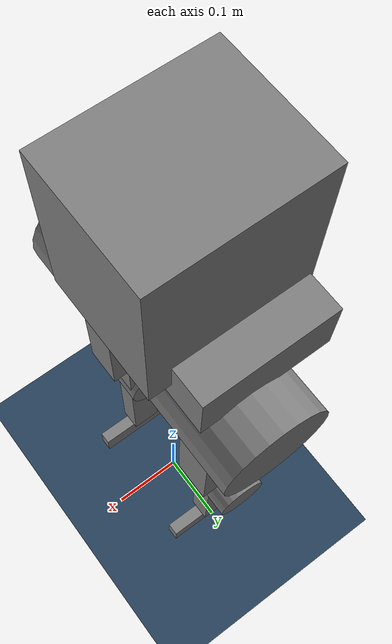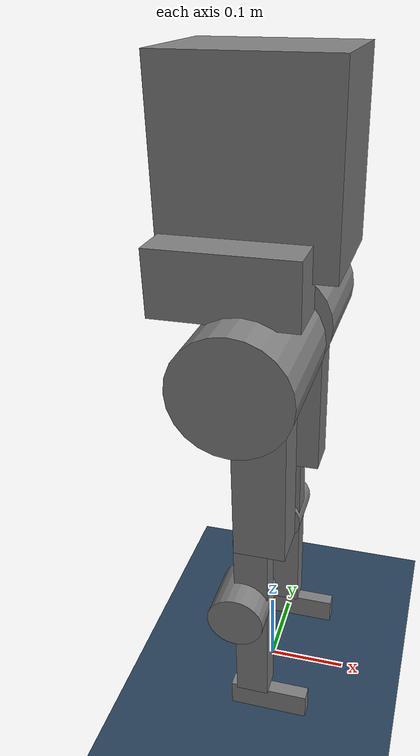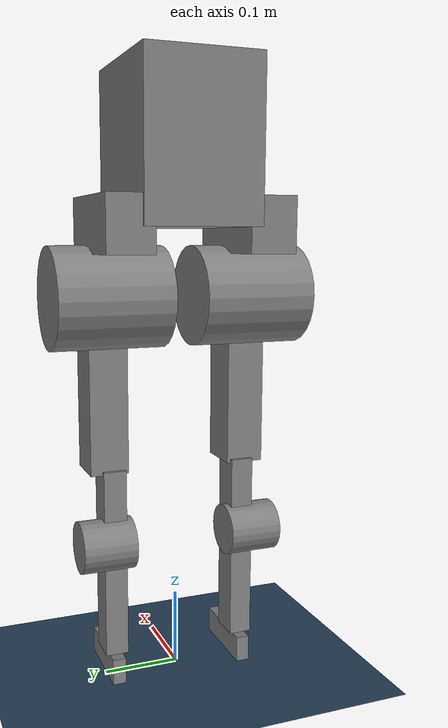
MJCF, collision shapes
<mujoco model="hunter scene">
  <include file="hunter.xml"/>

  <statistic center="0 0 1" extent="1.8"/>

  <visual>
    <headlight diffuse="0.6 0.6 0.6" ambient="0.3 0.3 0.3" specular="0 0 0"/>
    <rgba haze="0.15 0.25 0.35 1"/>
    <global azimuth="160" elevation="-20"/>
  </visual>

  <asset>
    <texture type="skybox" builtin="gradient" rgb1="0.3 0.5 0.7" rgb2="0 0 0" width="512" height="3072"/>
    <texture type="2d" name="groundplane" builtin="checker" mark="edge" rgb1="0.2 0.3 0.4" rgb2="0.1 0.2 0.3"
      markrgb="0.8 0.8 0.8" width="300" height="300"/>
    <material name="groundplane" texture="groundplane" texuniform="true" texrepeat="5 5" reflectance="0.2"/>
  </asset>

  <worldbody>
    <light pos="0 0 3.5" dir="0 0 -1" directional="true"/>
    <geom name="floor" size="0 0 0.05" type="plane" material="groundplane"/>
  </worldbody>

  <keyframe>
    <key name="home"
      qpos="
    0 0 0.70
    1 0 0 0
    0 0 0 0 0
    0 0 0 0 0 "/>
  </keyframe>

</mujoco>

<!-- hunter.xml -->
<mujoco model="hunter">
  <compiler angle="radian" meshdir="meshes/"/>

  <default>
    <default class="hunter">
      <joint damping="1" armature="0.1"/>
      <default class="visual">
        <geom type="mesh" contype="0" conaffinity="0" group="1" density="0" rgba="0.75294 0.75294 0.75294 1"/>
      </default>
      <default class="collision">
        <geom group="3" mass="0" density="0"/>
        <default class="foot">
          <geom type="sphere" size=".001"/>
          <default class="foot1">
            <geom size="0.001" contype="0" conaffinity="0" density="0"/>
          </default>
          <default class="foot2">
            <geom size="0.001"/>
          </default>
        </default>
      </default>
      <site size="0.001" rgba="0.5 0.5 0.5 0.3" group="4"/>
    </default>
    <default class="hunter_motor">
      <motor gear="1" ctrllimited="true" ctrlrange="-100  100" />
    </default>

  </default>

  <asset>
    <mesh name="base_link" file="base_link.STL"/>
    <mesh name="leg_l1_link" file="leg_l1_link.STL"/>
    <mesh name="leg_l2_link" file="leg_l2_link.STL"/>
    <mesh name="leg_l3_link" file="leg_l3_link.STL"/>
    <mesh name="leg_l4_link" file="leg_l4_link.STL"/>
    <mesh name="leg_l5_link" file="leg_l5_link.STL"/>
    <mesh name="leg_r1_link" file="leg_r1_link.STL"/>
    <mesh name="leg_r2_link" file="leg_r2_link.STL"/>
    <mesh name="leg_r3_link" file="leg_r3_link.STL"/>
    <mesh name="leg_r4_link" file="leg_r4_link.STL"/>
    <mesh name="leg_r5_link" file="leg_r5_link.STL"/>
  </asset>
  <worldbody>
    <light mode="targetbodycom" target="base_link" pos="2 0 2.5"/>
    <body name="base_link" pos="0 0 0.7" childclass="hunter">
      <inertial pos="-0.010856 -6.8e-05 -0.007128" quat="0.979606 0.00882716 0.200723 -0.00231074" mass="5.67363"
      	diaginertia="0.0355096 0.0296524 0.0283549"/>
      <freejoint/>
      <geom class="visual" mesh="base_link"/>
      <geom class="collision" size="0.092 0.075 0.1" pos="-0.01 0 -0.006" type="box"/>
      <site name="imu" pos="0 0 0"/>
      <body name="leg_l1_link" pos="-0.002 0.09 -0.1035">
        <inertial pos="0.002501 5.3e-05 -0.002722" quat="0.472677 0.527005 0.495251 0.503556" mass="0.453728"
          diaginertia="0.000163063 0.000147076 8.18618e-05"/>
        <joint name="leg_l1_joint" pos="0 0 0" axis="1 0 0" range="-0.2 0.5" frictionloss="0.2"/>
        <geom class="visual" mesh="leg_l1_link"/>
        <geom class="collision" type="box" size="0.03 0.035 0.0775" pos="-0.019 -0.001 0" quat="0.500398 0.5 0.499602 0.5"/>
        <body name="leg_l2_link" pos="0 -0.00016972 -0.0325">
          <inertial pos="-0.000273 0.043826 -0.058639" quat="0.7074 0.0648812 -0.0612384 0.70116" mass="0.925998"
            diaginertia="0.00166463 0.00123897 0.0010754"/>
          <joint name="leg_l2_joint" pos="0 0 0" axis="0 0 1" range="-0.5 1" frictionloss="0.2"/>
          <geom class="visual" mesh="leg_l2_link"/>
          <geom class="collision" size="0.065 0.073" pos="0 0.0046 -0.057" quat="0.707388 0.706825 0 0" type="cylinder" />
          <body name="leg_l3_link" pos="0 -0.01433 -0.0575">
            <inertial pos="0.003163 -0.022552 -0.027258" quat="0.678041 0.0230005 -0.0875592 0.729428" mass="1.39047" diaginertia="0.00722081 0.00694653 0.00181065"/>
            <joint name="leg_l3_joint" pos="0 0 0" axis="0 -1 0" range="-0.8 1.2" frictionloss="0.2"/>
            <geom class="visual" mesh="leg_l3_link"/>
            <geom class="collision" size="0.03 0.125 0.025" pos="0.015 0.02 -0.1" quat="0.707388 0.706825 0 0" type="box"/>
            <body name="leg_l4_link" pos="0 0.0145 -0.24">
              <inertial pos="-0.012044 0.006361 -0.093905" quat="0.696191 0.0388817 0.0714045 0.713237" mass="0.649518" diaginertia="0.00246473 0.00221871 0.000430556"/>
              <joint name="leg_l4_joint" pos="0 0 0" axis="0 1 0" range="0 1.5" frictionloss="0.2"/>
              <geom class="visual" mesh="leg_l4_link"/>
              <geom class="collision" size="0.0205 0.125 0.015" pos="0 0 -0.105" quat="0.707388 0.706825 0 0" type="box"/>
              <geom class="collision" size="0.034 0.035" pos="-0.011 0.012 -0.079" quat="0.707388 0.706825 0 0" type="cylinder" />
              <body name="leg_l5_link" pos="0.005 0 -0.23995">
                <inertial pos="0.012435 0 -0.015511" quat="0.48854 0.511203 0.511203 0.48854" mass="0.030265" diaginertia="2.5e-05 2.40454e-05 1.95464e-06"/>
                <joint name="leg_l5_joint" pos="0 0 0" axis="0 -1 0" range="-1.1 1.1" frictionloss="0.2"/>
                <geom class="visual" mesh="leg_l5_link"/>
                <geom class="collision" size="0.05005 0.01725 0.00875" pos="0.01503 0 -0.0102" quat="0.707388 0.706825 0 0" type="box" />
                <body name="leg_l_f1_link" pos="0.06 0 -0.007">
                  <inertial pos="0 0 0" mass="0.01" diaginertia="1e-06 1e-06 1e-06"/>
                  <geom class="foot1"/>
                  <geom class="foot2"/>
                  <site name="leg_l_f1_site" pos="0 0 0"/>
                </body>
                <body name="leg_l_f2_link" pos="-0.03 0 -0.007">
                  <inertial pos="0 0 0" mass="0.01" diaginertia="1e-06 1e-06 1e-06"/>
                  <geom class="foot1"/>
                  <geom class="foot2"/>
                  <site name="leg_l_f2_site" pos="0 0 0"/>
                </body>
              </body>
            </body>
          </body>
        </body>
      </body>
      <body name="leg_r1_link" pos="-0.002 -0.09 -0.1035">
        <inertial pos="0.002501 -5.3e-05 -0.002722" quat="0.503556 0.495251 0.527005 0.472677" mass="0.453728" diaginertia="0.000163063 0.000147076 8.18618e-05"/>
        <joint name="leg_r1_joint" pos="0 0 0" axis="1 0 0" range="-0.5 0.2" frictionloss="0.2"/>
        <geom class="visual" mesh="leg_r1_link"/>
        <geom class="collision" size="0.03 0.035 0.0775" pos="-0.019 -0.001 0" quat="0.500398 0.5 0.499602 0.5" type="box"/>
        <body name="leg_r2_link" pos="0 0.00016972 -0.0325">
          <inertial pos="9e-05 -0.043826 -0.058639" quat="0.7074 0.0648812 -0.0612384 0.70116" mass="0.925998" diaginertia="0.00166463 0.00123897 0.0010754"/>
          <joint name="leg_r2_joint" pos="0 0 0" axis="0 0 1" range="-1 0.5" frictionloss="0.2"/>
          <geom class="visual" mesh="leg_r2_link"/>
          <geom class="collision" size="0.065 0.073" pos="0 -0.0033 -0.057" quat="0.707388 0.706825 0 0" type="cylinder"/>
          <body name="leg_r3_link" pos="0 0.01633 -0.0575">
            <inertial pos="0.003311 0.02265 -0.027271" quat="0.734236 -0.0877978 0.023126 0.672795" mass="1.38862" diaginertia="0.00722344 0.00694292 0.00180965"/>
            <joint name="leg_r3_joint" pos="0 0 0" axis="0 1 0" range="-1.2 0.8" frictionloss="0.2"/>
            <geom class="visual" mesh="leg_r3_link"/>
            <geom class="collision" size="0.03 0.125 0.025" pos="0.015 -0.02 -0.1" quat="0.707388 0.706825 0 0" type="box"/>
            <body name="leg_r4_link" pos="0 -0.0145 -0.24">
              <inertial pos="-0.007886 -0.007123 -0.088091" quat="0.589012 0.00853647 -0.018288 0.807872" mass="0.61472" diaginertia="0.00177827 0.00175932 0.00018341"/>
              <joint name="leg_r4_joint" pos="0 0 0" axis="0 1 0" range="0 1.5" frictionloss="0.2"/>
              <geom class="visual" mesh="leg_r4_link"/>
              <geom class="collision" size="0.0205 0.125 0.015" pos="0 0 -0.105" quat="0.707388 0.706825 0 0" type="box" />
              <geom class="collision" size="0.034 0.035" pos="-0.011 -0.012 -0.079" quat="0.707388 0.706825 0 0" type="cylinder" />
              <body name="leg_r5_link" pos="0.005 0 -0.23995">
                <inertial pos="0.012435 -0.0005 -0.015511" quat="0.48854 0.511203 0.511203 0.48854" mass="0.030265" diaginertia="2.5e-05 2.40454e-05 1.95464e-06"/>
                <joint name="leg_r5_joint" pos="0 0 0" axis="0 1 0" range="-1.1 1.1" frictionloss="0.2"/>
                <geom class="visual" mesh="leg_r5_link"/>
                <geom class="collision" size="0.05005 0.01725 0.00875" pos="0.01503 0 -0.0102" quat="0.707388 0.706825 0 0" type="box" />
                <body name="leg_r_f1_link" pos="0.06 0 -0.007">
                  <inertial pos="0 0 0" mass="0.01" diaginertia="1e-06 1e-06 1e-06"/>
                  <geom class="foot1"/>
                  <geom class="foot2"/>
                  <site name="leg_r_f1_site" pos="0 0 0"/>
                </body>
                <body name="leg_r_f2_link" pos="-0.03 0 -0.007">
                  <inertial pos="0 0 0" mass="0.01" diaginertia="1e-06 1e-06 1e-06"/>
                  <geom class="foot1"/>
                  <geom class="foot2"/>
                  <site name="leg_r_f2_site" pos="0 0 0"/>
                </body>
              </body>
            </body>
          </body>
        </body>
      </body>
    </body>
  </worldbody>

  <actuator>
    <motor class="hunter_motor" name="leg_l1_joint" joint="leg_l1_joint"/>
    <motor class="hunter_motor" name="leg_l2_joint" joint="leg_l2_joint"/>
    <motor class="hunter_motor" name="leg_l3_joint" joint="leg_l3_joint"/>
    <motor class="hunter_motor" name="leg_l4_joint" joint="leg_l4_joint"/>
    <motor class="hunter_motor" name="leg_l5_joint" joint="leg_l5_joint"/>

    <motor class="hunter_motor" name="leg_r1_joint" joint="leg_r1_joint"/>
    <motor class="hunter_motor" name="leg_r2_joint" joint="leg_r2_joint"/>
    <motor class="hunter_motor" name="leg_r3_joint" joint="leg_r3_joint"/>
    <motor class="hunter_motor" name="leg_r4_joint" joint="leg_r4_joint"/>
    <motor class="hunter_motor" name="leg_r5_joint" joint="leg_r5_joint"/>

  </actuator>

  <sensor>
    <framelinvel name='base_linvel' objtype='body' objname='base_link'/>
    <frameangvel name='base_angvel' objtype='body' objname='base_link'/>
    <framepos name='base_pos' objtype='body' objname='base_link'/>
    <framequat name='base_quat' objtype='body' objname='base_link'/>
    <accelerometer name="accel" site="imu"/>
    <gyro name="gyro" site="imu"/>

    <force name="force_L_f1" site="leg_l_f1_site"/>
    <force name="force_L_f2" site="leg_l_f2_site"/>
    <force name="force_R_f1" site="leg_r_f1_site"/>
    <force name="force_R_f2" site="leg_r_f2_site"/>

    <jointpos name="jpos_L1" joint="leg_l1_joint" />
    <jointpos name="jpos_L2" joint="leg_l2_joint" />
    <jointpos name="jpos_L3" joint="leg_l3_joint" />
    <jointpos name="jpos_L4" joint="leg_l4_joint" />
    <jointpos name="jpos_L5" joint="leg_l5_joint" />
    <jointpos name="jpos_R1" joint="leg_r1_joint" />
    <jointpos name="jpos_R2" joint="leg_r2_joint" />
    <jointpos name="jpos_R3" joint="leg_r3_joint" />
    <jointpos name="jpos_R4" joint="leg_r4_joint" />
    <jointpos name="jpos_R5" joint="leg_r5_joint" />

    <jointvel name="jvel_L1" joint="leg_l1_joint" />
    <jointvel name="jvel_L2" joint="leg_l2_joint" />
    <jointvel name="jvel_L3" joint="leg_l3_joint" />
    <jointvel name="jvel_L4" joint="leg_l4_joint" />
    <jointvel name="jvel_L5" joint="leg_l5_joint" />
    <jointvel name="jvel_R1" joint="leg_r1_joint" />
    <jointvel name="jvel_R2" joint="leg_r2_joint" />
    <jointvel name="jvel_R3" joint="leg_r3_joint" />
    <jointvel name="jvel_R4" joint="leg_r4_joint" />
    <jointvel name="jvel_R5" joint="leg_r5_joint" />

  </sensor>

</mujoco>
